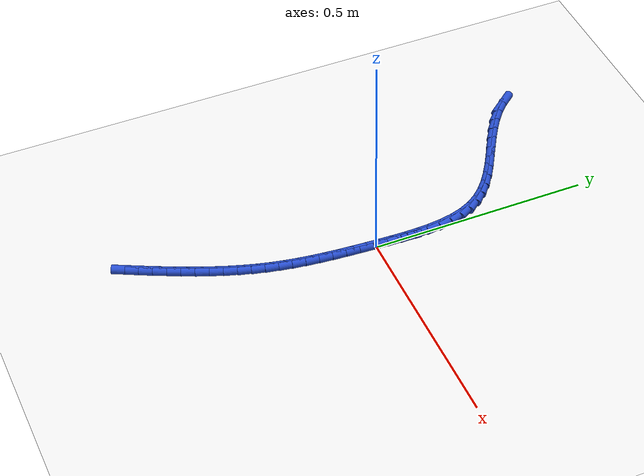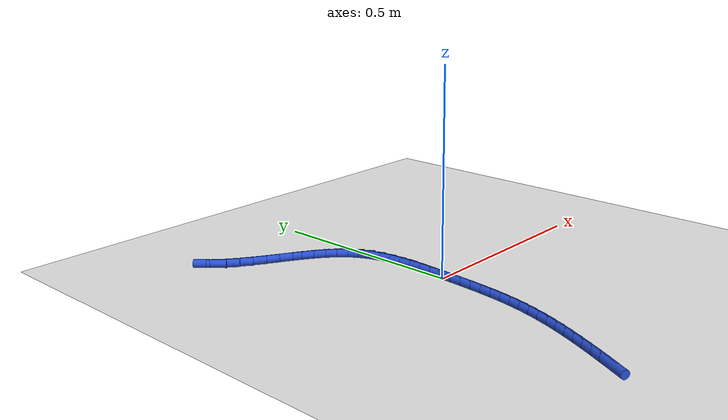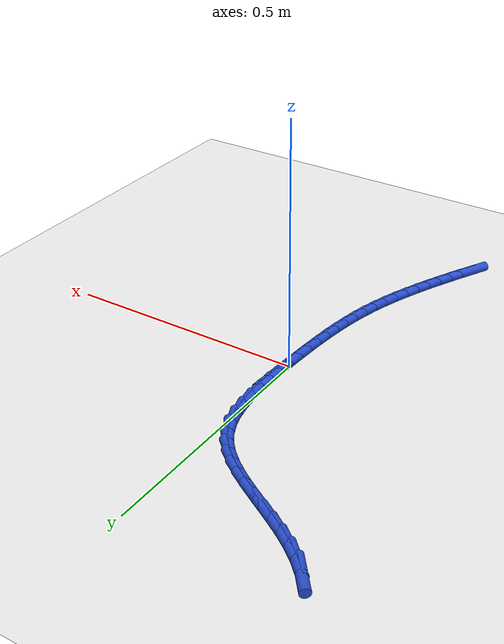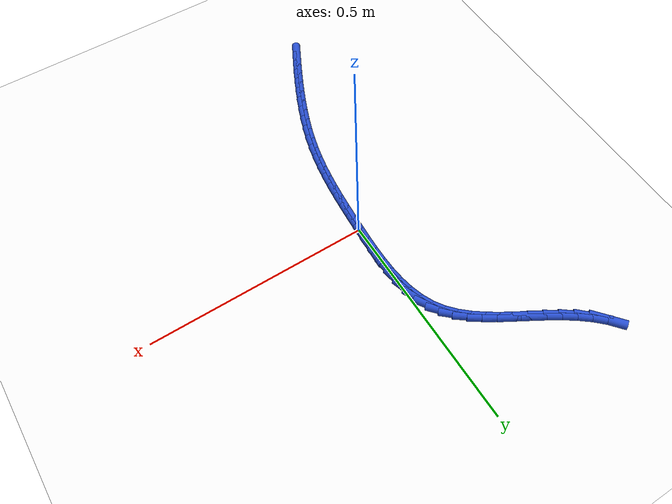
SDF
<sdf version="1.6">
 <world name="default">
  <model name="ground_plane">
   <static>1</static>
   <link name="link">
    <collision name="collision">
     <geometry><plane><normal>0 0 1</normal><size>100 100</size></plane></geometry>
     <surface><friction><ode><mu>100</mu><mu2>50</mu2></ode></friction></surface>
    </collision>
    <visual name="visual">
     <cast_shadows>0</cast_shadows>
     <geometry><plane><normal>0 0 1</normal><size>100 100</size></plane></geometry>
     <material>
      <script><uri>file://media/materials/scripts/gazebo.material</uri><name>Gazebo/WhiteGlow</name></script>
     </material>
    </visual>
   </link>
  </model>
  <model name="line">
   <link name="link_0">
    <pose>-5.204170427930421e-18 4.163336342344337e-17 0.01 0 1.57 1.5197245684614573</pose>
    <collision name="collision">
     <geometry><cylinder><radius>0.01</radius><length>0.08</length></cylinder></geometry>
    </collision>
    <visual name="visual">
     <material>
      <script><name>Gazebo/Blue</name><uri>file://media/materials/scripts/gazebo.material</uri></script>
     </material>
     <geometry><cylinder><radius>0.01</radius><length>0.08</length></cylinder></geometry>
    </visual>
   </link>
   <link name="link_1">
    <pose>0.0016297047634209454 0.03188234823221027 0.01 0 1.57 1.5369050830865814</pose>
    <collision name="collision">
     <geometry><cylinder><radius>0.01</radius><length>0.08</length></cylinder></geometry>
    </collision>
    <visual name="visual">
     <material>
      <script><name>Gazebo/Blue</name><uri>file://media/materials/scripts/gazebo.material</uri></script>
     </material>
     <geometry><cylinder><radius>0.01</radius><length>0.08</length></cylinder></geometry>
    </visual>
   </link>
   <link name="link_2">
    <pose>0.0027185940531616274 0.06399897286291034 0.01 0 1.57 1.567410280789605</pose>
    <collision name="collision">
     <geometry><cylinder><radius>0.01</radius><length>0.08</length></cylinder></geometry>
    </collision>
    <visual name="visual">
     <material>
      <script><name>Gazebo/Blue</name><uri>file://media/materials/scripts/gazebo.material</uri></script>
     </material>
     <geometry><cylinder><radius>0.01</radius><length>0.08</length></cylinder></geometry>
    </visual>
   </link>
   <link name="link_3">
    <pose>0.002826859336559397 0.09597280590101473 0.01 0 1.57 -1.5291034431454884</pose>
    <collision name="collision">
     <geometry><cylinder><radius>0.01</radius><length>0.08</length></cylinder></geometry>
    </collision>
    <visual name="visual">
     <material>
      <script><name>Gazebo/Blue</name><uri>file://media/materials/scripts/gazebo.material</uri></script>
     </material>
     <geometry><cylinder><radius>0.01</radius><length>0.08</length></cylinder></geometry>
    </visual>
   </link>
   <link name="link_4">
    <pose>0.0015146920809516132 0.1274267793554381 0.01 0 1.57 -1.4673477267837867</pose>
    <collision name="collision">
     <geometry><cylinder><radius>0.01</radius><length>0.08</length></cylinder></geometry>
    </collision>
    <visual name="visual">
     <material>
      <script><name>Gazebo/Blue</name><uri>file://media/materials/scripts/gazebo.material</uri></script>
     </material>
     <geometry><cylinder><radius>0.01</radius><length>0.08</length></cylinder></geometry>
    </visual>
   </link>
   <link name="link_5">
    <pose>-0.0016577162463243672 0.1579838252350949 0.01 0 1.57 -1.3860460183805976</pose>
    <collision name="collision">
     <geometry><cylinder><radius>0.01</radius><length>0.08</length></cylinder></geometry>
    </collision>
    <visual name="visual">
     <material>
      <script><name>Gazebo/Blue</name><uri>file://media/materials/scripts/gazebo.material</uri></script>
     </material>
     <geometry><cylinder><radius>0.01</radius><length>0.08</length></cylinder></geometry>
    </visual>
   </link>
   <link name="link_6">
    <pose>-0.007130174177931185 0.18726687554889968 0.01 0 1.57 -1.281907335555164</pose>
    <collision name="collision">
     <geometry><cylinder><radius>0.01</radius><length>0.08</length></cylinder></geometry>
    </collision>
    <visual name="visual">
     <material>
      <script><name>Gazebo/Blue</name><uri>file://media/materials/scripts/gazebo.material</uri></script>
     </material>
     <geometry><cylinder><radius>0.01</radius><length>0.08</length></cylinder></geometry>
    </visual>
   </link>
   <link name="link_7">
    <pose>-0.015342490246531485 0.21489886230576702 0.01 0 1.57 -1.1521646684753741</pose>
    <collision name="collision">
     <geometry><cylinder><radius>0.01</radius><length>0.08</length></cylinder></geometry>
    </collision>
    <visual name="visual">
     <material>
      <script><name>Gazebo/Blue</name><uri>file://media/materials/scripts/gazebo.material</uri></script>
     </material>
     <geometry><cylinder><radius>0.01</radius><length>0.08</length></cylinder></geometry>
    </visual>
   </link>
   <link name="link_8">
    <pose>-0.026734472984787913 0.24050271751461139 0.01 0 1.57 -0.9986588103412112</pose>
    <collision name="collision">
     <geometry><cylinder><radius>0.01</radius><length>0.08</length></cylinder></geometry>
    </collision>
    <visual name="visual">
     <material>
      <script><name>Gazebo/Blue</name><uri>file://media/materials/scripts/gazebo.material</uri></script>
     </material>
     <geometry><cylinder><radius>0.01</radius><length>0.08</length></cylinder></geometry>
    </visual>
   </link>
   <link name="link_9">
    <pose>-0.04169859572575505 0.26373935189920267 0.01 0 1.57 -0.8518726115012331</pose>
    <collision name="collision">
     <geometry><cylinder><radius>0.01</radius><length>0.08</length></cylinder></geometry>
    </collision>
    <visual name="visual">
     <material>
      <script><name>Gazebo/Blue</name><uri>file://media/materials/scripts/gazebo.material</uri></script>
     </material>
     <geometry><cylinder><radius>0.01</radius><length>0.08</length></cylinder></geometry>
    </visual>
   </link>
   <link name="link_10">
    <pose>-0.06006258130907506 0.28472279559827457 0.01 0 1.57 -0.7339603214715237</pose>
    <collision name="collision">
     <geometry><cylinder><radius>0.01</radius><length>0.08</length></cylinder></geometry>
    </collision>
    <visual name="visual">
     <material>
      <script><name>Gazebo/Blue</name><uri>file://media/materials/scripts/gazebo.material</uri></script>
     </material>
     <geometry><cylinder><radius>0.01</radius><length>0.08</length></cylinder></geometry>
    </visual>
   </link>
   <link name="link_11">
    <pose>-0.08128280236514089 0.3038650262362648 0.01 0 1.57 -0.6454970557292256</pose>
    <collision name="collision">
     <geometry><cylinder><radius>0.01</radius><length>0.08</length></cylinder></geometry>
    </collision>
    <visual name="visual">
     <material>
      <script><name>Gazebo/Blue</name><uri>file://media/materials/scripts/gazebo.material</uri></script>
     </material>
     <geometry><cylinder><radius>0.01</radius><length>0.08</length></cylinder></geometry>
    </visual>
   </link>
   <link name="link_12">
    <pose>-0.10480912035673637 0.3215832455790542 0.01 0 1.57 -0.5840644457928118</pose>
    <collision name="collision">
     <geometry><cylinder><radius>0.01</radius><length>0.08</length></cylinder></geometry>
    </collision>
    <visual name="visual">
     <material>
      <script><name>Gazebo/Blue</name><uri>file://media/materials/scripts/gazebo.material</uri></script>
     </material>
     <geometry><cylinder><radius>0.01</radius><length>0.08</length></cylinder></geometry>
    </visual>
   </link>
   <link name="link_13">
    <pose>-0.1300913967466453 0.3382946553925232 0.01 0 1.57 -0.5467506337242448</pose>
    <collision name="collision">
     <geometry><cylinder><radius>0.01</radius><length>0.08</length></cylinder></geometry>
    </collision>
    <visual name="visual">
     <material>
      <script><name>Gazebo/Blue</name><uri>file://media/materials/scripts/gazebo.material</uri></script>
     </material>
     <geometry><cylinder><radius>0.01</radius><length>0.08</length></cylinder></geometry>
    </visual>
   </link>
   <link name="link_14">
    <pose>-0.15657949299765136 0.3544164574425528 0.01 0 1.57 -0.5312440793245494</pose>
    <collision name="collision">
     <geometry><cylinder><radius>0.01</radius><length>0.08</length></cylinder></geometry>
    </collision>
    <visual name="visual">
     <material>
      <script><name>Gazebo/Blue</name><uri>file://media/materials/scripts/gazebo.material</uri></script>
     </material>
     <geometry><cylinder><radius>0.01</radius><length>0.08</length></cylinder></geometry>
    </visual>
   </link>
   <link name="link_15">
    <pose>-0.1837232705725385 0.37036585349502343 0.01 0 1.57 -0.5362156325968038</pose>
    <collision name="collision">
     <geometry><cylinder><radius>0.01</radius><length>0.08</length></cylinder></geometry>
    </collision>
    <visual name="visual">
     <material>
      <script><name>Gazebo/Blue</name><uri>file://media/materials/scripts/gazebo.material</uri></script>
     </material>
     <geometry><cylinder><radius>0.01</radius><length>0.08</length></cylinder></geometry>
    </visual>
   </link>
   <link name="link_16">
    <pose>-0.2109725909340905 0.38656004531581606 0.01 0 1.57 -0.5613640888909666</pose>
    <collision name="collision">
     <geometry><cylinder><radius>0.01</radius><length>0.08</length></cylinder></geometry>
    </collision>
    <visual name="visual">
     <material>
      <script><name>Gazebo/Blue</name><uri>file://media/materials/scripts/gazebo.material</uri></script>
     </material>
     <geometry><cylinder><radius>0.01</radius><length>0.08</length></cylinder></geometry>
    </visual>
   </link>
   <link name="link_17">
    <pose>-0.2377773155450912 0.4034162346708114 0.01 0 1.57 -0.6072956276216246</pose>
    <collision name="collision">
     <geometry><cylinder><radius>0.01</radius><length>0.08</length></cylinder></geometry>
    </collision>
    <visual name="visual">
     <material>
      <script><name>Gazebo/Blue</name><uri>file://media/materials/scripts/gazebo.material</uri></script>
     </material>
     <geometry><cylinder><radius>0.01</radius><length>0.08</length></cylinder></geometry>
    </visual>
   </link>
   <link name="link_18">
    <pose>-0.2635873058683243 0.42135162332589005 0.01 0 1.57 -0.6752356784478661</pose>
    <collision name="collision">
     <geometry><cylinder><radius>0.01</radius><length>0.08</length></cylinder></geometry>
    </collision>
    <visual name="visual">
     <material>
      <script><name>Gazebo/Blue</name><uri>file://media/materials/scripts/gazebo.material</uri></script>
     </material>
     <geometry><cylinder><radius>0.01</radius><length>0.08</length></cylinder></geometry>
    </visual>
   </link>
   <link name="link_19">
    <pose>-0.2878524233665737 0.4407834130469327 0.01 0 1.57 -0.766448251580772</pose>
    <collision name="collision">
     <geometry><cylinder><radius>0.01</radius><length>0.08</length></cylinder></geometry>
    </collision>
    <visual name="visual">
     <material>
      <script><name>Gazebo/Blue</name><uri>file://media/materials/scripts/gazebo.material</uri></script>
     </material>
     <geometry><cylinder><radius>0.01</radius><length>0.08</length></cylinder></geometry>
    </visual>
   </link>
   <link name="link_20">
    <pose>-0.31002252950262316 0.46212880559982034 0.01 0 1.57 -0.8811950141061291</pose>
    <collision name="collision">
     <geometry><cylinder><radius>0.01</radius><length>0.08</length></cylinder></geometry>
    </collision>
    <visual name="visual">
     <material>
      <script><name>Gazebo/Blue</name><uri>file://media/materials/scripts/gazebo.material</uri></script>
     </material>
     <geometry><cylinder><radius>0.01</radius><length>0.08</length></cylinder></geometry>
    </visual>
   </link>
   <link name="link_232">
    <pose>-0.14133080812551474 -0.5167341340470838 0.01 0 1.57 1.102025928817324</pose>
    <collision name="collision">
     <geometry><cylinder><radius>0.01</radius><length>0.08</length></cylinder></geometry>
    </collision>
    <visual name="visual">
     <material>
      <script><name>Gazebo/Blue</name><uri>file://media/materials/scripts/gazebo.material</uri></script>
     </material>
     <geometry><cylinder><radius>0.01</radius><length>0.08</length></cylinder></geometry>
    </visual>
   </link>
   <link name="link_233">
    <pose>-0.12792950523172833 -0.4902713102031142 0.01 0 1.57 1.1130675025667889</pose>
    <collision name="collision">
     <geometry><cylinder><radius>0.01</radius><length>0.08</length></cylinder></geometry>
    </collision>
    <visual name="visual">
     <material>
      <script><name>Gazebo/Blue</name><uri>file://media/materials/scripts/gazebo.material</uri></script>
     </material>
     <geometry><cylinder><radius>0.01</radius><length>0.08</length></cylinder></geometry>
    </visual>
   </link>
   <link name="link_234">
    <pose>-0.1147161586333557 -0.46344889320411353 0.01 0 1.57 1.1258560204851327</pose>
    <collision name="collision">
     <geometry><cylinder><radius>0.01</radius><length>0.08</length></cylinder></geometry>
    </collision>
    <visual name="visual">
     <material>
      <script><name>Gazebo/Blue</name><uri>file://media/materials/scripts/gazebo.material</uri></script>
     </material>
     <geometry><cylinder><radius>0.01</radius><length>0.08</length></cylinder></geometry>
    </visual>
   </link>
   <link name="link_235">
    <pose>-0.10175523960267006 -0.4362674618384979 0.01 0 1.57 1.1418494831753</pose>
    <collision name="collision">
     <geometry><cylinder><radius>0.01</radius><length>0.08</length></cylinder></geometry>
    </collision>
    <visual name="visual">
     <material>
      <script><name>Gazebo/Blue</name><uri>file://media/materials/scripts/gazebo.material</uri></script>
     </material>
     <geometry><cylinder><radius>0.01</radius><length>0.08</length></cylinder></geometry>
    </visual>
   </link>
   <link name="link_236">
    <pose>-0.089175665696112 -0.4087619249461863 0.01 0 1.57 1.1611562103776039</pose>
    <collision name="collision">
     <geometry><cylinder><radius>0.01</radius><length>0.08</length></cylinder></geometry>
    </collision>
    <visual name="visual">
     <material>
      <script><name>Gazebo/Blue</name><uri>file://media/materials/scripts/gazebo.material</uri></script>
     </material>
     <geometry><cylinder><radius>0.01</radius><length>0.08</length></cylinder></geometry>
    </visual>
   </link>
   <link name="link_237">
    <pose>-0.07710732140075097 -0.3809677064437807 0.01 0 1.57 1.1839059120761</pose>
    <collision name="collision">
     <geometry><cylinder><radius>0.01</radius><length>0.08</length></cylinder></geometry>
    </collision>
    <visual name="visual">
     <material>
      <script><name>Gazebo/Blue</name><uri>file://media/materials/scripts/gazebo.material</uri></script>
     </material>
     <geometry><cylinder><radius>0.01</radius><length>0.08</length></cylinder></geometry>
    </visual>
   </link>
   <link name="link_238">
    <pose>-0.06568009120365638 -0.3529202302478832 0.01 0 1.57 1.2102668884907213</pose>
    <collision name="collision">
     <geometry><cylinder><radius>0.01</radius><length>0.08</length></cylinder></geometry>
    </collision>
    <visual name="visual">
     <material>
      <script><name>Gazebo/Blue</name><uri>file://media/materials/scripts/gazebo.material</uri></script>
     </material>
     <geometry><cylinder><radius>0.01</radius><length>0.08</length></cylinder></geometry>
    </visual>
   </link>
   <link name="link_239">
    <pose>-0.05502385959189769 -0.3246549202750958 0.01 0 1.57 1.2404409519370103</pose>
    <collision name="collision">
     <geometry><cylinder><radius>0.01</radius><length>0.08</length></cylinder></geometry>
    </collision>
    <visual name="visual">
     <material>
      <script><name>Gazebo/Blue</name><uri>file://media/materials/scripts/gazebo.material</uri></script>
     </material>
     <geometry><cylinder><radius>0.01</radius><length>0.08</length></cylinder></geometry>
    </visual>
   </link>
   <link name="link_240">
    <pose>-0.04526851105254462 -0.2962072004420214 0.01 0 1.57 1.2746564680045218</pose>
    <collision name="collision">
     <geometry><cylinder><radius>0.01</radius><length>0.08</length></cylinder></geometry>
    </collision>
    <visual name="visual">
     <material>
      <script><name>Gazebo/Blue</name><uri>file://media/materials/scripts/gazebo.material</uri></script>
     </material>
     <geometry><cylinder><radius>0.01</radius><length>0.08</length></cylinder></geometry>
    </visual>
   </link>
   <link name="link_241">
    <pose>-0.03654393007266606 -0.2676124946652605 0.01 0 1.57 1.313106608413907</pose>
    <collision name="collision">
     <geometry><cylinder><radius>0.01</radius><length>0.08</length></cylinder></geometry>
    </collision>
    <visual name="visual">
     <material>
      <script><name>Gazebo/Blue</name><uri>file://media/materials/scripts/gazebo.material</uri></script>
     </material>
     <geometry><cylinder><radius>0.01</radius><length>0.08</length></cylinder></geometry>
    </visual>
   </link>
   <link name="link_242">
    <pose>-0.028978243660534364 -0.2389055813151523 0.01 0 1.57 1.3529807045356153</pose>
    <collision name="collision">
     <geometry><cylinder><radius>0.01</radius><length>0.08</length></cylinder></geometry>
    </collision>
    <visual name="visual">
     <material>
      <script><name>Gazebo/Blue</name><uri>file://media/materials/scripts/gazebo.material</uri></script>
     </material>
     <geometry><cylinder><radius>0.01</radius><length>0.08</length></cylinder></geometry>
    </visual>
   </link>
   <link name="link_243">
    <pose>-0.02259934486357949 -0.2100844214422463 0.01 0 1.57 1.389436818726791</pose>
    <collision name="collision">
     <geometry><cylinder><radius>0.01</radius><length>0.08</length></cylinder></geometry>
    </collision>
    <visual name="visual">
     <material>
      <script><name>Gazebo/Blue</name><uri>file://media/materials/scripts/gazebo.material</uri></script>
     </material>
     <geometry><cylinder><radius>0.01</radius><length>0.08</length></cylinder></geometry>
    </visual>
   </link>
   <link name="link_244">
    <pose>-0.017282690625972794 -0.18109098420857514 0.01 0 1.57 1.4216566545525813</pose>
    <collision name="collision">
     <geometry><cylinder><radius>0.01</radius><length>0.08</length></cylinder></geometry>
    </collision>
    <visual name="visual">
     <material>
      <script><name>Gazebo/Blue</name><uri>file://media/materials/scripts/gazebo.material</uri></script>
     </material>
     <geometry><cylinder><radius>0.01</radius><length>0.08</length></cylinder></geometry>
    </visual>
   </link>
   <link name="link_245">
    <pose>-0.012890961287952774 -0.15186254575288033 0.01 0 1.57 1.4493317826121501</pose>
    <collision name="collision">
     <geometry><cylinder><radius>0.01</radius><length>0.08</length></cylinder></geometry>
    </collision>
    <visual name="visual">
     <material>
      <script><name>Gazebo/Blue</name><uri>file://media/materials/scripts/gazebo.material</uri></script>
     </material>
     <geometry><cylinder><radius>0.01</radius><length>0.08</length></cylinder></geometry>
    </visual>
   </link>
   <link name="link_246">
    <pose>-0.009286837189757917 -0.12233638221390322 0.01 0 1.57 1.472281432139439</pose>
    <collision name="collision">
     <geometry><cylinder><radius>0.01</radius><length>0.08</length></cylinder></geometry>
    </collision>
    <visual name="visual">
     <material>
      <script><name>Gazebo/Blue</name><uri>file://media/materials/scripts/gazebo.material</uri></script>
     </material>
     <geometry><cylinder><radius>0.01</radius><length>0.08</length></cylinder></geometry>
    </visual>
   </link>
   <link name="link_247">
    <pose>-0.006332998671626719 -0.0924497697303852 0.01 0 1.57 1.4904388949547847</pose>
    <collision name="collision">
     <geometry><cylinder><radius>0.01</radius><length>0.08</length></cylinder></geometry>
    </collision>
    <visual name="visual">
     <material>
      <script><name>Gazebo/Blue</name><uri>file://media/materials/scripts/gazebo.material</uri></script>
     </material>
     <geometry><cylinder><radius>0.01</radius><length>0.08</length></cylinder></geometry>
    </visual>
   </link>
   <link name="link_248">
    <pose>-0.00389212607379767 -0.062139984441067685 0.01 0 1.57 1.503834385187028</pose>
    <collision name="collision">
     <geometry><cylinder><radius>0.01</radius><length>0.08</length></cylinder></geometry>
    </collision>
    <visual name="visual">
     <material>
      <script><name>Gazebo/Blue</name><uri>file://media/materials/scripts/gazebo.material</uri></script>
     </material>
     <geometry><cylinder><radius>0.01</radius><length>0.08</length></cylinder></geometry>
    </visual>
   </link>
   <link name="link_249">
    <pose>-0.0018268997365092647 -0.031344302484692096 0.01 0 1.57 1.512577286666772</pose>
    <collision name="collision">
     <geometry><cylinder><radius>0.01</radius><length>0.08</length></cylinder></geometry>
    </collision>
    <visual name="visual">
     <material>
      <script><name>Gazebo/Blue</name><uri>file://media/materials/scripts/gazebo.material</uri></script>
     </material>
     <geometry><cylinder><radius>0.01</radius><length>0.08</length></cylinder></geometry>
    </visual>
   </link>
   <link name="link_250">
    <pose>6.071532165918825e-18 2.1510571102112408e-16 0.01 0 1.57 1.5168397411042258</pose>
    <collision name="collision">
     <geometry><cylinder><radius>0.01</radius><length>0.08</length></cylinder></geometry>
    </collision>
    <visual name="visual">
     <material>
      <script><name>Gazebo/Blue</name><uri>file://media/materials/scripts/gazebo.material</uri></script>
     </material>
     <geometry><cylinder><radius>0.01</radius><length>0.08</length></cylinder></geometry>
    </visual>
   </link>
   <link name="link_251">
    <pose>0.00172589279549165 0.031955646874267815 0.01 0 1.57 1.51684258416871</pose>
    <collision name="collision">
     <geometry><cylinder><radius>0.01</radius><length>0.08</length></cylinder></geometry>
    </collision>
    <visual name="visual">
     <material>
      <script><name>Gazebo/Blue</name><uri>file://media/materials/scripts/gazebo.material</uri></script>
     </material>
     <geometry><cylinder><radius>0.01</radius><length>0.08</length></cylinder></geometry>
    </visual>
   </link>
   <link name="link_252">
    <pose>0.003488098309727174 0.06458536199936932 0.01 0 1.57 1.516841177472689</pose>
    <collision name="collision">
     <geometry><cylinder><radius>0.01</radius><length>0.08</length></cylinder></geometry>
    </collision>
    <visual name="visual">
     <material>
      <script><name>Gazebo/Blue</name><uri>file://media/materials/scripts/gazebo.material</uri></script>
     </material>
     <geometry><cylinder><radius>0.01</radius><length>0.08</length></cylinder></geometry>
    </visual>
   </link>
  </model>
 </world>
</sdf>
